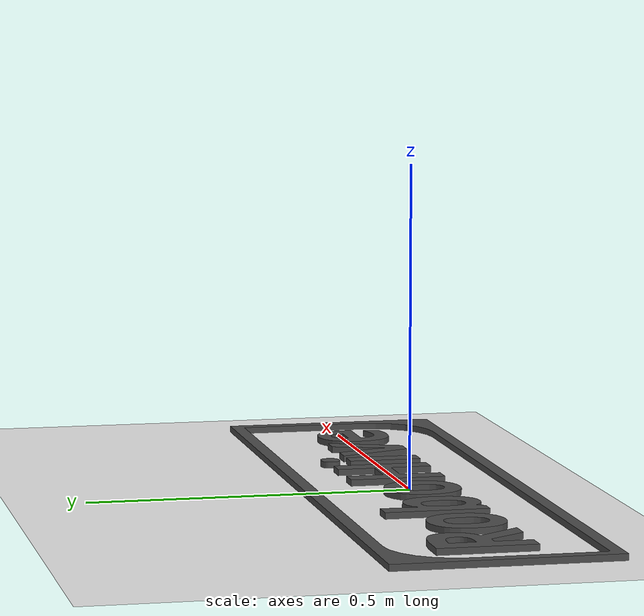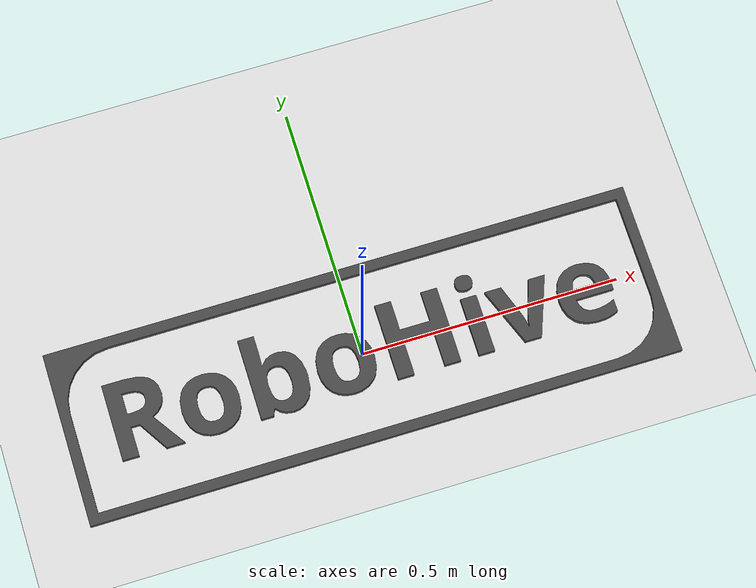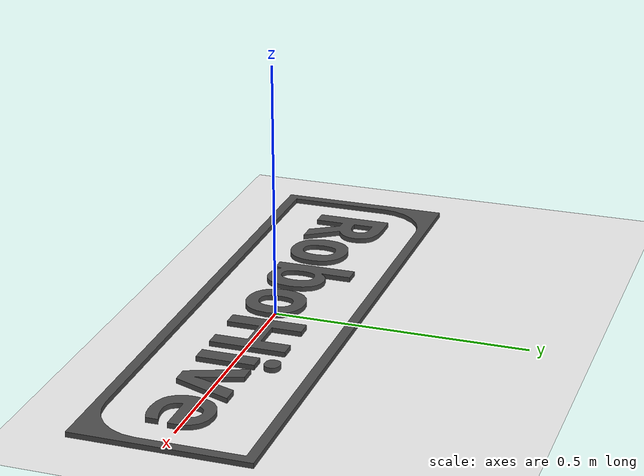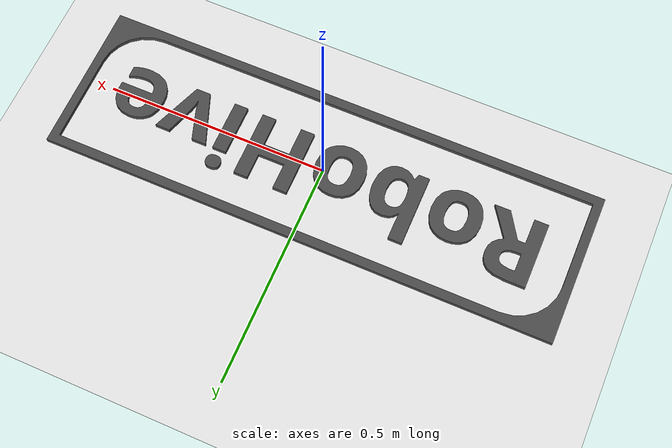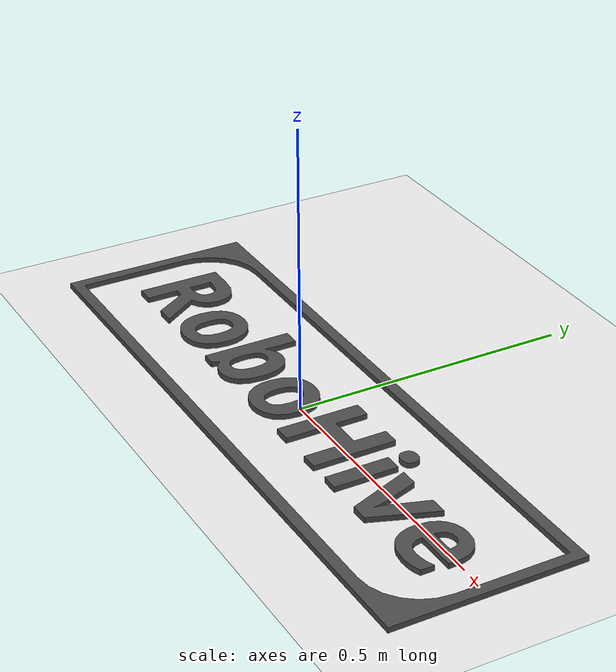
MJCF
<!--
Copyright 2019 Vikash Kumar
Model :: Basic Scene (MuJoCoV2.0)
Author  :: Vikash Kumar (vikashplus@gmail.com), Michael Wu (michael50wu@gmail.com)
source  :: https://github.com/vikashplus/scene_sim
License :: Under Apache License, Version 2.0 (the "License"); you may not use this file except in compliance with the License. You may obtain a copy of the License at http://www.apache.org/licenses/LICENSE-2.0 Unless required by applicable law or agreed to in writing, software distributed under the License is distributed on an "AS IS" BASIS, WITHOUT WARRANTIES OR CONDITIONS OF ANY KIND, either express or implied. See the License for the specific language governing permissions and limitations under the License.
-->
<mujoco model="basic scene">

  <asset>
    <texture name="skybox" type="skybox" gridsize="3 4" gridlayout=".U..LFRB.D.." file="../scene_sim/textures/night.png"/>
    <texture name="texplane" type="2d" height="1" width="1" file="../scene_sim/textures/white_marble_tile2.png"/>
    <material name="MatPlane" reflectance="0.05" texture="texplane" texrepeat="4 4" texuniform="true"/>
    <mesh name="robohive" file="../scene_sim/meshes/robohive.stl"/>
  </asset>

  <visual>
    <map fogstart="1.5" fogend="5" force="0.1" znear="0.1"/>
    <quality shadowsize="4096" offsamples="4"/>
  </visual>

  <statistic extent="3"/>

  <worldbody>
    <light name="left_light" directional="true" diffuse=".3 .3 .32" specular="0.3 0.3 0.3" pos="-1 -1 1" dir="1 1 -1"/>
    <light name="right_light" directional="true" diffuse=".3 .3 .32" specular="0.3 0.3 0.3" pos="1 -1 1" dir="-1 1 -1"/>
    <light name="front_light" directional="true" diffuse=".3 .3 .32" specular="0.3 0.3 0.3" pos="0 1 1" dir="0 -1 -1"/>
    <geom name="floor" pos="0 0 0.0001" size="-1 -1 .1" conaffinity="1" contype="1" type="plane" material="MatPlane" condim="3"/>
    <geom name="robohive" type="mesh" mesh="robohive" conaffinity="0" contype="0" rgba=".3 .3 .3 1"/>
    <site name="xaxis" fromto="0 0 0 1 0 0" size=".005" type="capsule" rgba="1 0 0 .25" group="3"/>
    <site name="yaxis" fromto="0 0 0 0 1 0" size=".005" type="capsule" rgba="0 1 0 .25" group="3"/>
  </worldbody>

</mujoco>
